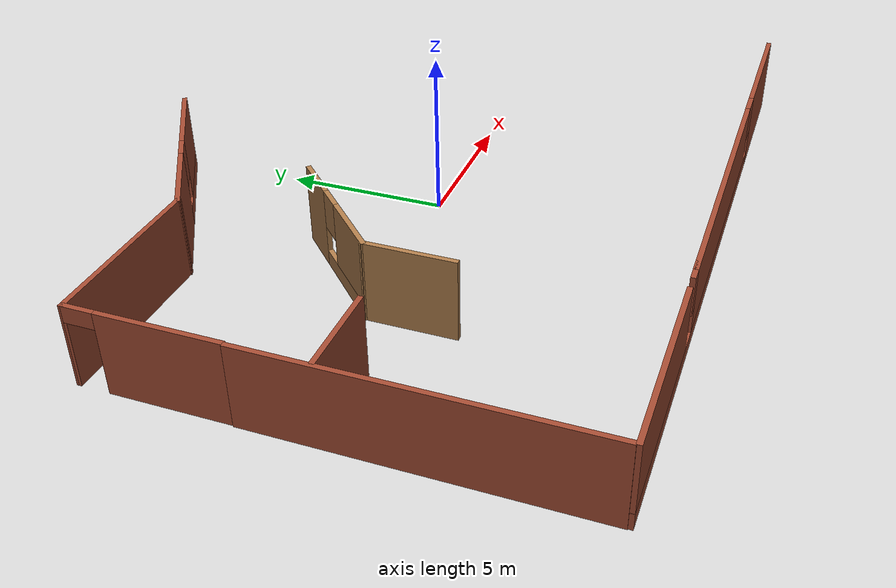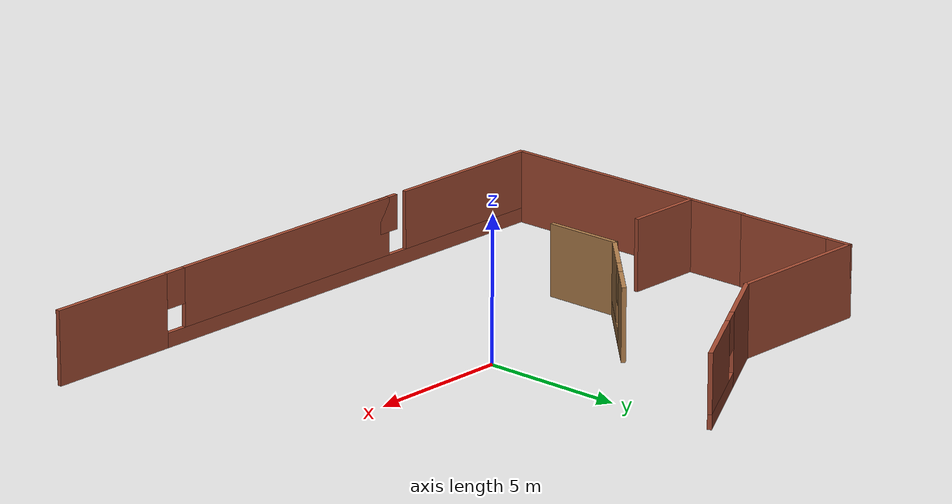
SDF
<sdf version="1.6">
 <model name="office">
  <link name="Wall_16">
   <pose>-0.257157 -8.66079 0 0 -0 3.14159</pose>
   <inertial>
    <inertia><ixx>0</ixx><ixy>0</ixy><ixz>0</ixz><iyy>0</iyy><iyz>0</iyz><izz>0</izz></inertia>
    <mass>0</mass>
   </inertial>
   <visual name="Wall_16_Visual_5">
    <pose>4.13509 0 1.9 0 -0 0</pose>
    <geometry><box><size>0.801337 0.15 1.2</size></box></geometry>
    <material>
     <script><uri>file://media/materials/scripts/gazebo.material</uri><name>Gazebo/Bricks</name></script>
     <ambient>0.435294 0.796078 0.67451 1</ambient>
     <shader type="pixel"/>
     <diffuse>1 1 1 1</diffuse>
     <specular>0.2 0.2 0.2 1</specular>
     <emissive>0 0 0 1</emissive>
    </material>
    <meta><layer>0</layer></meta>
   </visual>
   <visual name="Wall_16_Visual_0">
    <pose>-8.41899 0 1.25 0 -0 0</pose>
    <geometry><box><size>4.66983 0.15 2.5</size></box></geometry>
    <material>
     <script><uri>file://media/materials/scripts/gazebo.material</uri><name>Gazebo/Bricks</name></script>
     <ambient>0.435294 0.796078 0.67451 1</ambient>
     <shader type="pixel"/>
     <diffuse>1 1 1 1</diffuse>
     <specular>0.2 0.2 0.2 1</specular>
     <emissive>0 0 0 1</emissive>
    </material>
    <meta><layer>0</layer></meta>
   </visual>
   <visual name="Wall_16_Visual_3">
    <pose>7.84255 0 1.5 0 -0 0</pose>
    <geometry><box><size>5.82463 0.15 2</size></box></geometry>
    <material>
     <script><uri>file://media/materials/scripts/gazebo.material</uri><name>Gazebo/Bricks</name></script>
     <ambient>0.435294 0.796078 0.67451 1</ambient>
     <shader type="pixel"/>
     <diffuse>1 1 1 1</diffuse>
     <specular>0.2 0.2 0.2 1</specular>
     <emissive>0 0 0 1</emissive>
    </material>
    <meta><layer>0</layer></meta>
   </visual>
   <visual name="Wall_16_Visual_4">
    <pose>-5.68797 0 1.9 0 -0 0</pose>
    <geometry><box><size>0.801337 0.15 1.2</size></box></geometry>
    <material>
     <script><uri>file://media/materials/scripts/gazebo.material</uri><name>Gazebo/Bricks</name></script>
     <ambient>0.435294 0.796078 0.67451 1</ambient>
     <shader type="pixel"/>
     <diffuse>1 1 1 1</diffuse>
     <specular>0.2 0.2 0.2 1</specular>
     <emissive>0 0 0 1</emissive>
    </material>
    <meta><layer>0</layer></meta>
   </visual>
   <visual name="Wall_16_Visual_2">
    <pose>-0.576441 0 1.5 0 -0 0</pose>
    <geometry><box><size>9.43881 0.15 2</size></box></geometry>
    <material>
     <script><uri>file://media/materials/scripts/gazebo.material</uri><name>Gazebo/Bricks</name></script>
     <ambient>0.435294 0.796078 0.67451 1</ambient>
     <shader type="pixel"/>
     <diffuse>1 1 1 1</diffuse>
     <specular>0.2 0.2 0.2 1</specular>
     <emissive>0 0 0 1</emissive>
    </material>
    <meta><layer>0</layer></meta>
   </visual>
   <visual name="Wall_16_Visual_1">
    <pose>2.33101 0 0.25 0 -0 0</pose>
    <geometry><box><size>16.8662 0.15 0.5</size></box></geometry>
    <material>
     <script><uri>file://media/materials/scripts/gazebo.material</uri><name>Gazebo/Bricks</name></script>
     <ambient>0.435294 0.796078 0.67451 1</ambient>
     <shader type="pixel"/>
     <diffuse>1 1 1 1</diffuse>
     <specular>0.2 0.2 0.2 1</specular>
     <emissive>0 0 0 1</emissive>
    </material>
    <meta><layer>0</layer></meta>
   </visual>
   <collision name="Wall_16_Collision_0">
    <pose>-8.41899 0 1.25 0 -0 0</pose>
    <geometry><box><size>4.66983 0.15 2.5</size></box></geometry>
    <surface>
     <friction>
      <ode><mu>1</mu><mu2>1</mu2><fdir1>0 0 0</fdir1><slip1>0</slip1><slip2>0</slip2></ode>
      <torsional>
       <coefficient>1</coefficient>
       <patch_radius>0</patch_radius>
       <surface_radius>0</surface_radius>
       <use_patch_radius>1</use_patch_radius>
       <ode><slip>0</slip></ode>
      </torsional>
     </friction>
     <bounce><restitution_coefficient>0</restitution_coefficient><threshold>1e+06</threshold></bounce>
     <contact>
      <collide_without_contact>0</collide_without_contact>
      <collide_without_contact_bitmask>1</collide_without_contact_bitmask>
      <collide_bitmask>1</collide_bitmask>
      <ode>
       <soft_cfm>0</soft_cfm>
       <soft_erp>0.2</soft_erp>
       <kp>1e+13</kp>
       <kd>1</kd>
       <max_vel>0.01</max_vel>
       <min_depth>0</min_depth>
      </ode>
      <bullet>
       <split_impulse>1</split_impulse>
       <split_impulse_penetration_threshold>-0.01</split_impulse_penetration_threshold>
       <soft_cfm>0</soft_cfm>
       <soft_erp>0.2</soft_erp>
       <kp>1e+13</kp>
       <kd>1</kd>
      </bullet>
     </contact>
    </surface>
   </collision>
   <collision name="Wall_16_Collision_4">
    <pose>-5.68797 0 1.9 0 -0 0</pose>
    <geometry><box><size>0.801337 0.15 1.2</size></box></geometry>
    <surface>
     <friction>
      <ode><mu>1</mu><mu2>1</mu2><fdir1>0 0 0</fdir1><slip1>0</slip1><slip2>0</slip2></ode>
      <torsional>
       <coefficient>1</coefficient>
       <patch_radius>0</patch_radius>
       <surface_radius>0</surface_radius>
       <use_patch_radius>1</use_patch_radius>
       <ode><slip>0</slip></ode>
      </torsional>
     </friction>
     <bounce><restitution_coefficient>0</restitution_coefficient><threshold>1e+06</threshold></bounce>
     <contact>
      <collide_without_contact>0</collide_without_contact>
      <collide_without_contact_bitmask>1</collide_without_contact_bitmask>
      <collide_bitmask>1</collide_bitmask>
      <ode>
       <soft_cfm>0</soft_cfm>
       <soft_erp>0.2</soft_erp>
       <kp>1e+13</kp>
       <kd>1</kd>
       <max_vel>0.01</max_vel>
       <min_depth>0</min_depth>
      </ode>
      <bullet>
       <split_impulse>1</split_impulse>
       <split_impulse_penetration_threshold>-0.01</split_impulse_penetration_threshold>
       <soft_cfm>0</soft_cfm>
       <soft_erp>0.2</soft_erp>
       <kp>1e+13</kp>
       <kd>1</kd>
      </bullet>
     </contact>
    </surface>
   </collision>
   <collision name="Wall_16_Collision_2">
    <pose>-0.576441 0 1.5 0 -0 0</pose>
    <geometry><box><size>9.43881 0.15 2</size></box></geometry>
    <surface>
     <friction>
      <ode><mu>1</mu><mu2>1</mu2><fdir1>0 0 0</fdir1><slip1>0</slip1><slip2>0</slip2></ode>
      <torsional>
       <coefficient>1</coefficient>
       <patch_radius>0</patch_radius>
       <surface_radius>0</surface_radius>
       <use_patch_radius>1</use_patch_radius>
       <ode><slip>0</slip></ode>
      </torsional>
     </friction>
     <bounce><restitution_coefficient>0</restitution_coefficient><threshold>1e+06</threshold></bounce>
     <contact>
      <collide_without_contact>0</collide_without_contact>
      <collide_without_contact_bitmask>1</collide_without_contact_bitmask>
      <collide_bitmask>1</collide_bitmask>
      <ode>
       <soft_cfm>0</soft_cfm>
       <soft_erp>0.2</soft_erp>
       <kp>1e+13</kp>
       <kd>1</kd>
       <max_vel>0.01</max_vel>
       <min_depth>0</min_depth>
      </ode>
      <bullet>
       <split_impulse>1</split_impulse>
       <split_impulse_penetration_threshold>-0.01</split_impulse_penetration_threshold>
       <soft_cfm>0</soft_cfm>
       <soft_erp>0.2</soft_erp>
       <kp>1e+13</kp>
       <kd>1</kd>
      </bullet>
     </contact>
    </surface>
   </collision>
   <collision name="Wall_16_Collision_1">
    <pose>2.33101 0 0.25 0 -0 0</pose>
    <geometry><box><size>16.8662 0.15 0.5</size></box></geometry>
    <surface>
     <friction>
      <ode><mu>1</mu><mu2>1</mu2><fdir1>0 0 0</fdir1><slip1>0</slip1><slip2>0</slip2></ode>
      <torsional>
       <coefficient>1</coefficient>
       <patch_radius>0</patch_radius>
       <surface_radius>0</surface_radius>
       <use_patch_radius>1</use_patch_radius>
       <ode><slip>0</slip></ode>
      </torsional>
     </friction>
     <bounce><restitution_coefficient>0</restitution_coefficient><threshold>1e+06</threshold></bounce>
     <contact>
      <collide_without_contact>0</collide_without_contact>
      <collide_without_contact_bitmask>1</collide_without_contact_bitmask>
      <collide_bitmask>1</collide_bitmask>
      <ode>
       <soft_cfm>0</soft_cfm>
       <soft_erp>0.2</soft_erp>
       <kp>1e+13</kp>
       <kd>1</kd>
       <max_vel>0.01</max_vel>
       <min_depth>0</min_depth>
      </ode>
      <bullet>
       <split_impulse>1</split_impulse>
       <split_impulse_penetration_threshold>-0.01</split_impulse_penetration_threshold>
       <soft_cfm>0</soft_cfm>
       <soft_erp>0.2</soft_erp>
       <kp>1e+13</kp>
       <kd>1</kd>
      </bullet>
     </contact>
    </surface>
   </collision>
   <collision name="Wall_16_Collision_3">
    <pose>7.84255 0 1.5 0 -0 0</pose>
    <geometry><box><size>5.82463 0.15 2</size></box></geometry>
    <surface>
     <friction>
      <ode><mu>1</mu><mu2>1</mu2><fdir1>0 0 0</fdir1><slip1>0</slip1><slip2>0</slip2></ode>
      <torsional>
       <coefficient>1</coefficient>
       <patch_radius>0</patch_radius>
       <surface_radius>0</surface_radius>
       <use_patch_radius>1</use_patch_radius>
       <ode><slip>0</slip></ode>
      </torsional>
     </friction>
     <bounce><restitution_coefficient>0</restitution_coefficient><threshold>1e+06</threshold></bounce>
     <contact>
      <collide_without_contact>0</collide_without_contact>
      <collide_without_contact_bitmask>1</collide_without_contact_bitmask>
      <collide_bitmask>1</collide_bitmask>
      <ode>
       <soft_cfm>0</soft_cfm>
       <soft_erp>0.2</soft_erp>
       <kp>1e+13</kp>
       <kd>1</kd>
       <max_vel>0.01</max_vel>
       <min_depth>0</min_depth>
      </ode>
      <bullet>
       <split_impulse>1</split_impulse>
       <split_impulse_penetration_threshold>-0.01</split_impulse_penetration_threshold>
       <soft_cfm>0</soft_cfm>
       <soft_erp>0.2</soft_erp>
       <kp>1e+13</kp>
       <kd>1</kd>
      </bullet>
     </contact>
    </surface>
   </collision>
   <collision name="Wall_16_Collision_5">
    <pose>4.13509 0 1.9 0 -0 0</pose>
    <geometry><box><size>0.801337 0.15 1.2</size></box></geometry>
    <surface>
     <friction>
      <ode><mu>1</mu><mu2>1</mu2><fdir1>0 0 0</fdir1><slip1>0</slip1><slip2>0</slip2></ode>
      <torsional>
       <coefficient>1</coefficient>
       <patch_radius>0</patch_radius>
       <surface_radius>0</surface_radius>
       <use_patch_radius>1</use_patch_radius>
       <ode><slip>0</slip></ode>
      </torsional>
     </friction>
     <bounce><restitution_coefficient>0</restitution_coefficient><threshold>1e+06</threshold></bounce>
     <contact>
      <collide_without_contact>0</collide_without_contact>
      <collide_without_contact_bitmask>1</collide_without_contact_bitmask>
      <collide_bitmask>1</collide_bitmask>
      <ode>
       <soft_cfm>0</soft_cfm>
       <soft_erp>0.2</soft_erp>
       <kp>1e+13</kp>
       <kd>1</kd>
       <max_vel>0.01</max_vel>
       <min_depth>0</min_depth>
      </ode>
      <bullet>
       <split_impulse>1</split_impulse>
       <split_impulse_penetration_threshold>-0.01</split_impulse_penetration_threshold>
       <soft_cfm>0</soft_cfm>
       <soft_erp>0.2</soft_erp>
       <kp>1e+13</kp>
       <kd>1</kd>
      </bullet>
     </contact>
    </surface>
   </collision>
  </link>
  <link name="Wall_18">
   <pose>-10.0712 -1.17835 0 0 -0 3.14159</pose>
   <inertial>
    <inertia><ixx>0</ixx><ixy>0</ixy><ixz>0</ixz><iyy>0</iyy><iyz>0</iyz><izz>0</izz></inertia>
    <mass>0</mass>
   </inertial>
   <visual name="Wall_18_Visual_0">
    <pose>-0.488616 0 1.25 0 -0 0</pose>
    <geometry><box><size>2.70441 0.15 2.5</size></box></geometry>
    <material>
     <script><uri>file://media/materials/scripts/gazebo.material</uri><name>Gazebo/Bricks</name></script>
     <ambient>0.435 0.796 0.675 1</ambient>
     <shader type="pixel"><normal_map>__default__</normal_map></shader>
     <diffuse>1 1 1 1</diffuse>
     <specular>0.2 0.2 0.2 1</specular>
     <emissive>0 0 0 1</emissive>
    </material>
    <meta><layer>0</layer></meta>
   </visual>
   <collision name="Wall_18_Collision_0">
    <pose>-0.488616 0 1.25 0 -0 0</pose>
    <geometry><box><size>2.70441 0.15 2.5</size></box></geometry>
    <surface>
     <friction>
      <ode><mu>1</mu><mu2>1</mu2><fdir1>0 0 0</fdir1><slip1>0</slip1><slip2>0</slip2></ode>
      <torsional>
       <coefficient>1</coefficient>
       <patch_radius>0</patch_radius>
       <surface_radius>0</surface_radius>
       <use_patch_radius>1</use_patch_radius>
       <ode><slip>0</slip></ode>
      </torsional>
     </friction>
     <bounce><restitution_coefficient>0</restitution_coefficient><threshold>1e+06</threshold></bounce>
     <contact>
      <collide_without_contact>0</collide_without_contact>
      <collide_without_contact_bitmask>1</collide_without_contact_bitmask>
      <collide_bitmask>1</collide_bitmask>
      <ode>
       <soft_cfm>0</soft_cfm>
       <soft_erp>0.2</soft_erp>
       <kp>1e+13</kp>
       <kd>1</kd>
       <max_vel>0.01</max_vel>
       <min_depth>0</min_depth>
      </ode>
      <bullet>
       <split_impulse>1</split_impulse>
       <split_impulse_penetration_threshold>-0.01</split_impulse_penetration_threshold>
       <soft_cfm>0</soft_cfm>
       <soft_erp>0.2</soft_erp>
       <kp>1e+13</kp>
       <kd>1</kd>
      </bullet>
     </contact>
    </surface>
   </collision>
  </link>
  <link name="Wall_21">
   <pose>-4.52938 1.29817 0 0 0 -2.35619</pose>
   <visual name="Wall_21_Visual_3">
    <pose>-0.314868 0 1.9 0 -0 0</pose>
    <geometry><box><size>0.8 0.15 1.2</size></box></geometry>
    <material>
     <script><uri>file://media/materials/scripts/gazebo.material</uri><name>Gazebo/Wood</name></script>
     <ambient>0.435294 0.796078 0.67451 1</ambient>
     <shader type="pixel"/>
     <diffuse>1 1 1 1</diffuse>
     <specular>0.2 0.2 0.2 1</specular>
     <emissive>0 0 0 1</emissive>
    </material>
    <meta><layer>0</layer></meta>
   </visual>
   <visual name="Wall_21_Visual_2">
    <pose>1.16757 0 1.5 0 -0 0</pose>
    <geometry><box><size>2.16487 0.15 2</size></box></geometry>
    <material>
     <script><uri>file://media/materials/scripts/gazebo.material</uri><name>Gazebo/Wood</name></script>
     <ambient>0.435294 0.796078 0.67451 1</ambient>
     <shader type="pixel"/>
     <diffuse>1 1 1 1</diffuse>
     <specular>0.2 0.2 0.2 1</specular>
     <emissive>0 0 0 1</emissive>
    </material>
    <meta><layer>0</layer></meta>
   </visual>
   <visual name="Wall_21_Visual_1">
    <pose>0.767566 0 0.25 0 -0 0</pose>
    <geometry><box><size>2.96487 0.15 0.5</size></box></geometry>
    <material>
     <script><uri>file://media/materials/scripts/gazebo.material</uri><name>Gazebo/Wood</name></script>
     <ambient>0.435294 0.796078 0.67451 1</ambient>
     <shader type="pixel"/>
     <diffuse>1 1 1 1</diffuse>
     <specular>0.2 0.2 0.2 1</specular>
     <emissive>0 0 0 1</emissive>
    </material>
    <meta><layer>0</layer></meta>
   </visual>
   <visual name="Wall_21_Visual_0">
    <pose>-1.48243 0 1.25 0 -0 0</pose>
    <geometry><box><size>1.53513 0.15 2.5</size></box></geometry>
    <material>
     <script><uri>file://media/materials/scripts/gazebo.material</uri><name>Gazebo/Wood</name></script>
     <ambient>0.435294 0.796078 0.67451 1</ambient>
     <shader type="pixel"/>
     <diffuse>1 1 1 1</diffuse>
     <specular>0.2 0.2 0.2 1</specular>
     <emissive>0 0 0 1</emissive>
    </material>
    <meta><layer>0</layer></meta>
   </visual>
   <collision name="Wall_21_Collision_2">
    <pose>1.16757 0 1.5 0 -0 0</pose>
    <geometry><box><size>2.16487 0.15 2</size></box></geometry>
    <surface>
     <friction>
      <ode><mu>1</mu><mu2>1</mu2><fdir1>0 0 0</fdir1><slip1>0</slip1><slip2>0</slip2></ode>
      <torsional>
       <coefficient>1</coefficient>
       <patch_radius>0</patch_radius>
       <surface_radius>0</surface_radius>
       <use_patch_radius>1</use_patch_radius>
       <ode><slip>0</slip></ode>
      </torsional>
     </friction>
     <bounce><restitution_coefficient>0</restitution_coefficient><threshold>1e+06</threshold></bounce>
     <contact>
      <collide_without_contact>0</collide_without_contact>
      <collide_without_contact_bitmask>1</collide_without_contact_bitmask>
      <collide_bitmask>1</collide_bitmask>
      <ode>
       <soft_cfm>0</soft_cfm>
       <soft_erp>0.2</soft_erp>
       <kp>1e+13</kp>
       <kd>1</kd>
       <max_vel>0.01</max_vel>
       <min_depth>0</min_depth>
      </ode>
      <bullet>
       <split_impulse>1</split_impulse>
       <split_impulse_penetration_threshold>-0.01</split_impulse_penetration_threshold>
       <soft_cfm>0</soft_cfm>
       <soft_erp>0.2</soft_erp>
       <kp>1e+13</kp>
       <kd>1</kd>
      </bullet>
     </contact>
    </surface>
   </collision>
   <collision name="Wall_21_Collision_3">
    <pose>-0.314868 0 1.9 0 -0 0</pose>
    <geometry><box><size>0.8 0.15 1.2</size></box></geometry>
    <surface>
     <friction>
      <ode><mu>1</mu><mu2>1</mu2><fdir1>0 0 0</fdir1><slip1>0</slip1><slip2>0</slip2></ode>
      <torsional>
       <coefficient>1</coefficient>
       <patch_radius>0</patch_radius>
       <surface_radius>0</surface_radius>
       <use_patch_radius>1</use_patch_radius>
       <ode><slip>0</slip></ode>
      </torsional>
     </friction>
     <bounce><restitution_coefficient>0</restitution_coefficient><threshold>1e+06</threshold></bounce>
     <contact>
      <collide_without_contact>0</collide_without_contact>
      <collide_without_contact_bitmask>1</collide_without_contact_bitmask>
      <collide_bitmask>1</collide_bitmask>
      <ode>
       <soft_cfm>0</soft_cfm>
       <soft_erp>0.2</soft_erp>
       <kp>1e+13</kp>
       <kd>1</kd>
       <max_vel>0.01</max_vel>
       <min_depth>0</min_depth>
      </ode>
      <bullet>
       <split_impulse>1</split_impulse>
       <split_impulse_penetration_threshold>-0.01</split_impulse_penetration_threshold>
       <soft_cfm>0</soft_cfm>
       <soft_erp>0.2</soft_erp>
       <kp>1e+13</kp>
       <kd>1</kd>
      </bullet>
     </contact>
    </surface>
   </collision>
   <collision name="Wall_21_Collision_1">
    <pose>0.767566 0 0.25 0 -0 0</pose>
    <geometry><box><size>2.96487 0.15 0.5</size></box></geometry>
    <surface>
     <friction>
      <ode><mu>1</mu><mu2>1</mu2><fdir1>0 0 0</fdir1><slip1>0</slip1><slip2>0</slip2></ode>
      <torsional>
       <coefficient>1</coefficient>
       <patch_radius>0</patch_radius>
       <surface_radius>0</surface_radius>
       <use_patch_radius>1</use_patch_radius>
       <ode><slip>0</slip></ode>
      </torsional>
     </friction>
     <bounce><restitution_coefficient>0</restitution_coefficient><threshold>1e+06</threshold></bounce>
     <contact>
      <collide_without_contact>0</collide_without_contact>
      <collide_without_contact_bitmask>1</collide_without_contact_bitmask>
      <collide_bitmask>1</collide_bitmask>
      <ode>
       <soft_cfm>0</soft_cfm>
       <soft_erp>0.2</soft_erp>
       <kp>1e+13</kp>
       <kd>1</kd>
       <max_vel>0.01</max_vel>
       <min_depth>0</min_depth>
      </ode>
      <bullet>
       <split_impulse>1</split_impulse>
       <split_impulse_penetration_threshold>-0.01</split_impulse_penetration_threshold>
       <soft_cfm>0</soft_cfm>
       <soft_erp>0.2</soft_erp>
       <kp>1e+13</kp>
       <kd>1</kd>
      </bullet>
     </contact>
    </surface>
   </collision>
   <collision name="Wall_21_Collision_0">
    <pose>-1.48243 0 1.25 0 -0 0</pose>
    <geometry><box><size>1.53513 0.15 2.5</size></box></geometry>
    <surface>
     <friction>
      <ode><mu>1</mu><mu2>1</mu2><fdir1>0 0 0</fdir1><slip1>0</slip1><slip2>0</slip2></ode>
      <torsional>
       <coefficient>1</coefficient>
       <patch_radius>0</patch_radius>
       <surface_radius>0</surface_radius>
       <use_patch_radius>1</use_patch_radius>
       <ode><slip>0</slip></ode>
      </torsional>
     </friction>
     <bounce><restitution_coefficient>0</restitution_coefficient><threshold>1e+06</threshold></bounce>
     <contact>
      <collide_without_contact>0</collide_without_contact>
      <collide_without_contact_bitmask>1</collide_without_contact_bitmask>
      <collide_bitmask>1</collide_bitmask>
      <ode>
       <soft_cfm>0</soft_cfm>
       <soft_erp>0.2</soft_erp>
       <kp>1e+13</kp>
       <kd>1</kd>
       <max_vel>0.01</max_vel>
       <min_depth>0</min_depth>
      </ode>
      <bullet>
       <split_impulse>1</split_impulse>
       <split_impulse_penetration_threshold>-0.01</split_impulse_penetration_threshold>
       <soft_cfm>0</soft_cfm>
       <soft_erp>0.2</soft_erp>
       <kp>1e+13</kp>
       <kd>1</kd>
      </bullet>
     </contact>
    </surface>
   </collision>
  </link>
  <link name="Wall_22">
   <pose>-6.06734 -1.53979 0 0 0 -1.5708</pose>
   <visual name="Wall_22_Visual">
    <pose>0 0 1.25 0 -0 0</pose>
    <geometry><box><size>2.75 0.15 2.5</size></box></geometry>
    <material>
     <script><uri>file://media/materials/scripts/gazebo.material</uri><name>Gazebo/Wood</name></script>
     <ambient>0.435294 0.796078 0.67451 1</ambient>
     <shader type="pixel"/>
     <diffuse>1 1 1 1</diffuse>
     <specular>0.2 0.2 0.2 1</specular>
     <emissive>0 0 0 1</emissive>
    </material>
    <meta><layer>0</layer></meta>
   </visual>
   <collision name="Wall_22_Collision">
    <pose>0 0 1.25 0 -0 0</pose>
    <geometry><box><size>2.75 0.15 2.5</size></box></geometry>
    <surface>
     <friction>
      <ode><mu>1</mu><mu2>1</mu2><fdir1>0 0 0</fdir1><slip1>0</slip1><slip2>0</slip2></ode>
      <torsional>
       <coefficient>1</coefficient>
       <patch_radius>0</patch_radius>
       <surface_radius>0</surface_radius>
       <use_patch_radius>1</use_patch_radius>
       <ode><slip>0</slip></ode>
      </torsional>
     </friction>
     <bounce><restitution_coefficient>0</restitution_coefficient><threshold>1e+06</threshold></bounce>
     <contact>
      <collide_without_contact>0</collide_without_contact>
      <collide_without_contact_bitmask>1</collide_without_contact_bitmask>
      <collide_bitmask>1</collide_bitmask>
      <ode>
       <soft_cfm>0</soft_cfm>
       <soft_erp>0.2</soft_erp>
       <kp>1e+13</kp>
       <kd>1</kd>
       <max_vel>0.01</max_vel>
       <min_depth>0</min_depth>
      </ode>
      <bullet>
       <split_impulse>1</split_impulse>
       <split_impulse_penetration_threshold>-0.01</split_impulse_penetration_threshold>
       <soft_cfm>0</soft_cfm>
       <soft_erp>0.2</soft_erp>
       <kp>1e+13</kp>
       <kd>1</kd>
      </bullet>
     </contact>
    </surface>
   </collision>
  </link>
  <link name="Wall_5_clone">
   <pose>-10.9673 -3.76778 0 0 -0 1.5708</pose>
   <inertial>
    <inertia><ixx>0</ixx><ixy>0</ixy><ixz>0</ixz><iyy>0</iyy><iyz>0</iyz><izz>0</izz></inertia>
    <mass>0</mass>
   </inertial>
   <visual name="Wall_5_Visual">
    <pose>0 0 1.25 0 -0 0</pose>
    <geometry><box><size>9.67537 0.15 2.5</size></box></geometry>
    <material>
     <script><uri>file://media/materials/scripts/gazebo.material</uri><name>Gazebo/Bricks</name></script>
     <ambient>0.435294 0.796078 0.67451 1</ambient>
     <shader type="pixel"/>
     <diffuse>1 1 1 1</diffuse>
     <specular>0.2 0.2 0.2 1</specular>
     <emissive>0 0 0 1</emissive>
    </material>
    <meta><layer>0</layer></meta>
   </visual>
   <collision name="Wall_5_Collision">
    <pose>0 0 1.25 0 -0 0</pose>
    <geometry><box><size>9.67537 0.15 2.5</size></box></geometry>
    <surface>
     <friction>
      <ode><mu>1</mu><mu2>1</mu2><fdir1>0 0 0</fdir1><slip1>0</slip1><slip2>0</slip2></ode>
      <torsional>
       <coefficient>1</coefficient>
       <patch_radius>0</patch_radius>
       <surface_radius>0</surface_radius>
       <use_patch_radius>1</use_patch_radius>
       <ode><slip>0</slip></ode>
      </torsional>
     </friction>
     <bounce><restitution_coefficient>0</restitution_coefficient><threshold>1e+06</threshold></bounce>
     <contact>
      <collide_without_contact>0</collide_without_contact>
      <collide_without_contact_bitmask>1</collide_without_contact_bitmask>
      <collide_bitmask>1</collide_bitmask>
      <ode>
       <soft_cfm>0</soft_cfm>
       <soft_erp>0.2</soft_erp>
       <kp>1e+13</kp>
       <kd>1</kd>
       <max_vel>0.01</max_vel>
       <min_depth>0</min_depth>
      </ode>
      <bullet>
       <split_impulse>1</split_impulse>
       <split_impulse_penetration_threshold>-0.01</split_impulse_penetration_threshold>
       <soft_cfm>0</soft_cfm>
       <soft_erp>0.2</soft_erp>
       <kp>1e+13</kp>
       <kd>1</kd>
      </bullet>
     </contact>
    </surface>
   </collision>
  </link>
  <link name="Wall_7">
   <pose>-10.9373 3.2892 0 0 -0 1.5708</pose>
   <visual name="Wall_7_Visual_0">
    <pose>-0.480218 0 1.25 0 -0 0</pose>
    <geometry><box><size>3.53957 0.15 2.5</size></box></geometry>
    <material>
     <script><uri>file://media/materials/scripts/gazebo.material</uri><name>Gazebo/Bricks</name></script>
     <ambient>0.435294 0.796078 0.67451 1</ambient>
     <shader type="pixel"/>
     <diffuse>1 1 1 1</diffuse>
     <specular>0.2 0.2 0.2 1</specular>
     <emissive>0 0 0 1</emissive>
    </material>
    <meta><layer>0</layer></meta>
   </visual>
   <visual name="Wall_7_Visual_1">
    <pose>2.21978 0 1.25 0 -0 0</pose>
    <geometry><box><size>0.060435 0.15 2.5</size></box></geometry>
    <material>
     <script><uri>file://media/materials/scripts/gazebo.material</uri><name>Gazebo/Bricks</name></script>
     <ambient>0.435294 0.796078 0.67451 1</ambient>
     <shader type="pixel"/>
     <diffuse>1 1 1 1</diffuse>
     <specular>0.2 0.2 0.2 1</specular>
     <emissive>0 0 0 1</emissive>
    </material>
    <meta><layer>0</layer></meta>
   </visual>
   <visual name="Wall_7_Visual_2">
    <pose>1.73957 0 2.25 0 -0 0</pose>
    <geometry><box><size>0.9 0.15 0.5</size></box></geometry>
    <material>
     <script><uri>file://media/materials/scripts/gazebo.material</uri><name>Gazebo/Bricks</name></script>
     <ambient>0.435294 0.796078 0.67451 1</ambient>
     <shader type="pixel"/>
     <diffuse>1 1 1 1</diffuse>
     <specular>0.2 0.2 0.2 1</specular>
     <emissive>0 0 0 1</emissive>
    </material>
    <meta><layer>0</layer></meta>
   </visual>
   <collision name="Wall_7_Collision_0">
    <pose>-0.480218 0 1.25 0 -0 0</pose>
    <geometry><box><size>3.53957 0.15 2.5</size></box></geometry>
    <surface>
     <friction>
      <ode><mu>1</mu><mu2>1</mu2><fdir1>0 0 0</fdir1><slip1>0</slip1><slip2>0</slip2></ode>
      <torsional>
       <coefficient>1</coefficient>
       <patch_radius>0</patch_radius>
       <surface_radius>0</surface_radius>
       <use_patch_radius>1</use_patch_radius>
       <ode><slip>0</slip></ode>
      </torsional>
     </friction>
     <bounce><restitution_coefficient>0</restitution_coefficient><threshold>1e+06</threshold></bounce>
     <contact>
      <collide_without_contact>0</collide_without_contact>
      <collide_without_contact_bitmask>1</collide_without_contact_bitmask>
      <collide_bitmask>1</collide_bitmask>
      <ode>
       <soft_cfm>0</soft_cfm>
       <soft_erp>0.2</soft_erp>
       <kp>1e+13</kp>
       <kd>1</kd>
       <max_vel>0.01</max_vel>
       <min_depth>0</min_depth>
      </ode>
      <bullet>
       <split_impulse>1</split_impulse>
       <split_impulse_penetration_threshold>-0.01</split_impulse_penetration_threshold>
       <soft_cfm>0</soft_cfm>
       <soft_erp>0.2</soft_erp>
       <kp>1e+13</kp>
       <kd>1</kd>
      </bullet>
     </contact>
    </surface>
   </collision>
   <collision name="Wall_7_Collision_1">
    <pose>2.21978 0 1.25 0 -0 0</pose>
    <geometry><box><size>0.060435 0.15 2.5</size></box></geometry>
    <surface>
     <friction>
      <ode><mu>1</mu><mu2>1</mu2><fdir1>0 0 0</fdir1><slip1>0</slip1><slip2>0</slip2></ode>
      <torsional>
       <coefficient>1</coefficient>
       <patch_radius>0</patch_radius>
       <surface_radius>0</surface_radius>
       <use_patch_radius>1</use_patch_radius>
       <ode><slip>0</slip></ode>
      </torsional>
     </friction>
     <bounce><restitution_coefficient>0</restitution_coefficient><threshold>1e+06</threshold></bounce>
     <contact>
      <collide_without_contact>0</collide_without_contact>
      <collide_without_contact_bitmask>1</collide_without_contact_bitmask>
      <collide_bitmask>1</collide_bitmask>
      <ode>
       <soft_cfm>0</soft_cfm>
       <soft_erp>0.2</soft_erp>
       <kp>1e+13</kp>
       <kd>1</kd>
       <max_vel>0.01</max_vel>
       <min_depth>0</min_depth>
      </ode>
      <bullet>
       <split_impulse>1</split_impulse>
       <split_impulse_penetration_threshold>-0.01</split_impulse_penetration_threshold>
       <soft_cfm>0</soft_cfm>
       <soft_erp>0.2</soft_erp>
       <kp>1e+13</kp>
       <kd>1</kd>
      </bullet>
     </contact>
    </surface>
   </collision>
   <collision name="Wall_7_Collision_2">
    <pose>1.73957 0 2.25 0 -0 0</pose>
    <geometry><box><size>0.9 0.15 0.5</size></box></geometry>
    <surface>
     <friction>
      <ode><mu>1</mu><mu2>1</mu2><fdir1>0 0 0</fdir1><slip1>0</slip1><slip2>0</slip2></ode>
      <torsional>
       <coefficient>1</coefficient>
       <patch_radius>0</patch_radius>
       <surface_radius>0</surface_radius>
       <use_patch_radius>1</use_patch_radius>
       <ode><slip>0</slip></ode>
      </torsional>
     </friction>
     <bounce><restitution_coefficient>0</restitution_coefficient><threshold>1e+06</threshold></bounce>
     <contact>
      <collide_without_contact>0</collide_without_contact>
      <collide_without_contact_bitmask>1</collide_without_contact_bitmask>
      <collide_bitmask>1</collide_bitmask>
      <ode>
       <soft_cfm>0</soft_cfm>
       <soft_erp>0.2</soft_erp>
       <kp>1e+13</kp>
       <kd>1</kd>
       <max_vel>0.01</max_vel>
       <min_depth>0</min_depth>
      </ode>
      <bullet>
       <split_impulse>1</split_impulse>
       <split_impulse_penetration_threshold>-0.01</split_impulse_penetration_threshold>
       <soft_cfm>0</soft_cfm>
       <soft_erp>0.2</soft_erp>
       <kp>1e+13</kp>
       <kd>1</kd>
      </bullet>
     </contact>
    </surface>
   </collision>
  </link>
  <link name="Wall_8">
   <pose>-8.3873 5.4642 0 0 -0 0</pose>
   <visual name="Wall_8_Visual">
    <pose>0 0 1.25 0 -0 0</pose>
    <geometry><box><size>5.25 0.15 2.5</size></box></geometry>
    <material>
     <script><uri>file://media/materials/scripts/gazebo.material</uri><name>Gazebo/Bricks</name></script>
     <ambient>0.435294 0.796078 0.67451 1</ambient>
     <shader type="pixel"/>
     <diffuse>1 1 1 1</diffuse>
     <specular>0.2 0.2 0.2 1</specular>
     <emissive>0 0 0 1</emissive>
    </material>
    <meta><layer>0</layer></meta>
   </visual>
   <collision name="Wall_8_Collision">
    <pose>0 0 1.25 0 -0 0</pose>
    <geometry><box><size>5.25 0.15 2.5</size></box></geometry>
    <surface>
     <friction>
      <ode><mu>1</mu><mu2>1</mu2><fdir1>0 0 0</fdir1><slip1>0</slip1><slip2>0</slip2></ode>
      <torsional>
       <coefficient>1</coefficient>
       <patch_radius>0</patch_radius>
       <surface_radius>0</surface_radius>
       <use_patch_radius>1</use_patch_radius>
       <ode><slip>0</slip></ode>
      </torsional>
     </friction>
     <bounce><restitution_coefficient>0</restitution_coefficient><threshold>1e+06</threshold></bounce>
     <contact>
      <collide_without_contact>0</collide_without_contact>
      <collide_without_contact_bitmask>1</collide_without_contact_bitmask>
      <collide_bitmask>1</collide_bitmask>
      <ode>
       <soft_cfm>0</soft_cfm>
       <soft_erp>0.2</soft_erp>
       <kp>1e+13</kp>
       <kd>1</kd>
       <max_vel>0.01</max_vel>
       <min_depth>0</min_depth>
      </ode>
      <bullet>
       <split_impulse>1</split_impulse>
       <split_impulse_penetration_threshold>-0.01</split_impulse_penetration_threshold>
       <soft_cfm>0</soft_cfm>
       <soft_erp>0.2</soft_erp>
       <kp>1e+13</kp>
       <kd>1</kd>
      </bullet>
     </contact>
    </surface>
   </collision>
  </link>
  <link name="Wall_9">
   <pose>-3.08767 7.0517 0 0 -0 0.523599</pose>
   <visual name="Wall_9_Visual_0">
    <pose>-1.86997 0 1.25 0 -0 0</pose>
    <geometry><box><size>2.76007 0.15 2.5</size></box></geometry>
    <material>
     <script><uri>file://media/materials/scripts/gazebo.material</uri><name>Gazebo/Bricks</name></script>
     <ambient>0.435294 0.796078 0.67451 1</ambient>
     <shader type="pixel"/>
     <diffuse>1 1 1 1</diffuse>
     <specular>0.2 0.2 0.2 1</specular>
     <emissive>0 0 0 1</emissive>
    </material>
    <meta><layer>0</layer></meta>
   </visual>
   <visual name="Wall_9_Visual_1">
    <pose>1.38003 0 0.25 0 -0 0</pose>
    <geometry><box><size>3.73993 0.15 0.5</size></box></geometry>
    <material>
     <script><uri>file://media/materials/scripts/gazebo.material</uri><name>Gazebo/Bricks</name></script>
     <ambient>0.435294 0.796078 0.67451 1</ambient>
     <shader type="pixel"/>
     <diffuse>1 1 1 1</diffuse>
     <specular>0.2 0.2 0.2 1</specular>
     <emissive>0 0 0 1</emissive>
    </material>
    <meta><layer>0</layer></meta>
   </visual>
   <visual name="Wall_9_Visual_2">
    <pose>1.78003 0 1.5 0 -0 0</pose>
    <geometry><box><size>2.93993 0.15 2</size></box></geometry>
    <material>
     <script><uri>file://media/materials/scripts/gazebo.material</uri><name>Gazebo/Bricks</name></script>
     <ambient>0.435294 0.796078 0.67451 1</ambient>
     <shader type="pixel"/>
     <diffuse>1 1 1 1</diffuse>
     <specular>0.2 0.2 0.2 1</specular>
     <emissive>0 0 0 1</emissive>
    </material>
    <meta><layer>0</layer></meta>
   </visual>
   <visual name="Wall_9_Visual_3">
    <pose>-0.089932 0 1.9 0 -0 0</pose>
    <geometry><box><size>0.8 0.15 1.2</size></box></geometry>
    <material>
     <script><uri>file://media/materials/scripts/gazebo.material</uri><name>Gazebo/Bricks</name></script>
     <ambient>0.435294 0.796078 0.67451 1</ambient>
     <shader type="pixel"/>
     <diffuse>1 1 1 1</diffuse>
     <specular>0.2 0.2 0.2 1</specular>
     <emissive>0 0 0 1</emissive>
    </material>
    <meta><layer>0</layer></meta>
   </visual>
   <collision name="Wall_9_Collision_0">
    <pose>-1.86997 0 1.25 0 -0 0</pose>
    <geometry><box><size>2.76007 0.15 2.5</size></box></geometry>
    <surface>
     <friction>
      <ode><mu>1</mu><mu2>1</mu2><fdir1>0 0 0</fdir1><slip1>0</slip1><slip2>0</slip2></ode>
      <torsional>
       <coefficient>1</coefficient>
       <patch_radius>0</patch_radius>
       <surface_radius>0</surface_radius>
       <use_patch_radius>1</use_patch_radius>
       <ode><slip>0</slip></ode>
      </torsional>
     </friction>
     <bounce><restitution_coefficient>0</restitution_coefficient><threshold>1e+06</threshold></bounce>
     <contact>
      <collide_without_contact>0</collide_without_contact>
      <collide_without_contact_bitmask>1</collide_without_contact_bitmask>
      <collide_bitmask>1</collide_bitmask>
      <ode>
       <soft_cfm>0</soft_cfm>
       <soft_erp>0.2</soft_erp>
       <kp>1e+13</kp>
       <kd>1</kd>
       <max_vel>0.01</max_vel>
       <min_depth>0</min_depth>
      </ode>
      <bullet>
       <split_impulse>1</split_impulse>
       <split_impulse_penetration_threshold>-0.01</split_impulse_penetration_threshold>
       <soft_cfm>0</soft_cfm>
       <soft_erp>0.2</soft_erp>
       <kp>1e+13</kp>
       <kd>1</kd>
      </bullet>
     </contact>
    </surface>
   </collision>
   <collision name="Wall_9_Collision_1">
    <pose>1.38003 0 0.25 0 -0 0</pose>
    <geometry><box><size>3.73993 0.15 0.5</size></box></geometry>
    <surface>
     <friction>
      <ode><mu>1</mu><mu2>1</mu2><fdir1>0 0 0</fdir1><slip1>0</slip1><slip2>0</slip2></ode>
      <torsional>
       <coefficient>1</coefficient>
       <patch_radius>0</patch_radius>
       <surface_radius>0</surface_radius>
       <use_patch_radius>1</use_patch_radius>
       <ode><slip>0</slip></ode>
      </torsional>
     </friction>
     <bounce><restitution_coefficient>0</restitution_coefficient><threshold>1e+06</threshold></bounce>
     <contact>
      <collide_without_contact>0</collide_without_contact>
      <collide_without_contact_bitmask>1</collide_without_contact_bitmask>
      <collide_bitmask>1</collide_bitmask>
      <ode>
       <soft_cfm>0</soft_cfm>
       <soft_erp>0.2</soft_erp>
       <kp>1e+13</kp>
       <kd>1</kd>
       <max_vel>0.01</max_vel>
       <min_depth>0</min_depth>
      </ode>
      <bullet>
       <split_impulse>1</split_impulse>
       <split_impulse_penetration_threshold>-0.01</split_impulse_penetration_threshold>
       <soft_cfm>0</soft_cfm>
       <soft_erp>0.2</soft_erp>
       <kp>1e+13</kp>
       <kd>1</kd>
      </bullet>
     </contact>
    </surface>
   </collision>
   <collision name="Wall_9_Collision_2">
    <pose>1.78003 0 1.5 0 -0 0</pose>
    <geometry><box><size>2.93993 0.15 2</size></box></geometry>
    <surface>
     <friction>
      <ode><mu>1</mu><mu2>1</mu2><fdir1>0 0 0</fdir1><slip1>0</slip1><slip2>0</slip2></ode>
      <torsional>
       <coefficient>1</coefficient>
       <patch_radius>0</patch_radius>
       <surface_radius>0</surface_radius>
       <use_patch_radius>1</use_patch_radius>
       <ode><slip>0</slip></ode>
      </torsional>
     </friction>
     <bounce><restitution_coefficient>0</restitution_coefficient><threshold>1e+06</threshold></bounce>
     <contact>
      <collide_without_contact>0</collide_without_contact>
      <collide_without_contact_bitmask>1</collide_without_contact_bitmask>
      <collide_bitmask>1</collide_bitmask>
      <ode>
       <soft_cfm>0</soft_cfm>
       <soft_erp>0.2</soft_erp>
       <kp>1e+13</kp>
       <kd>1</kd>
       <max_vel>0.01</max_vel>
       <min_depth>0</min_depth>
      </ode>
      <bullet>
       <split_impulse>1</split_impulse>
       <split_impulse_penetration_threshold>-0.01</split_impulse_penetration_threshold>
       <soft_cfm>0</soft_cfm>
       <soft_erp>0.2</soft_erp>
       <kp>1e+13</kp>
       <kd>1</kd>
      </bullet>
     </contact>
    </surface>
   </collision>
   <collision name="Wall_9_Collision_3">
    <pose>-0.089932 0 1.9 0 -0 0</pose>
    <geometry><box><size>0.8 0.15 1.2</size></box></geometry>
    <surface>
     <friction>
      <ode><mu>1</mu><mu2>1</mu2><fdir1>0 0 0</fdir1><slip1>0</slip1><slip2>0</slip2></ode>
      <torsional>
       <coefficient>1</coefficient>
       <patch_radius>0</patch_radius>
       <surface_radius>0</surface_radius>
       <use_patch_radius>1</use_patch_radius>
       <ode><slip>0</slip></ode>
      </torsional>
     </friction>
     <bounce><restitution_coefficient>0</restitution_coefficient><threshold>1e+06</threshold></bounce>
     <contact>
      <collide_without_contact>0</collide_without_contact>
      <collide_without_contact_bitmask>1</collide_without_contact_bitmask>
      <collide_bitmask>1</collide_bitmask>
      <ode>
       <soft_cfm>0</soft_cfm>
       <soft_erp>0.2</soft_erp>
       <kp>1e+13</kp>
       <kd>1</kd>
       <max_vel>0.01</max_vel>
       <min_depth>0</min_depth>
      </ode>
      <bullet>
       <split_impulse>1</split_impulse>
       <split_impulse_penetration_threshold>-0.01</split_impulse_penetration_threshold>
       <soft_cfm>0</soft_cfm>
       <soft_erp>0.2</soft_erp>
       <kp>1e+13</kp>
       <kd>1</kd>
      </bullet>
     </contact>
    </surface>
   </collision>
  </link>
  <static>1</static>
 </model>
</sdf>
